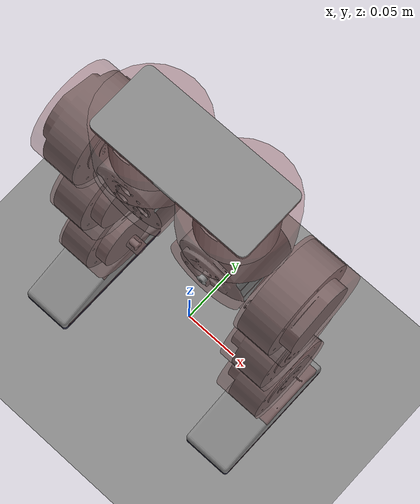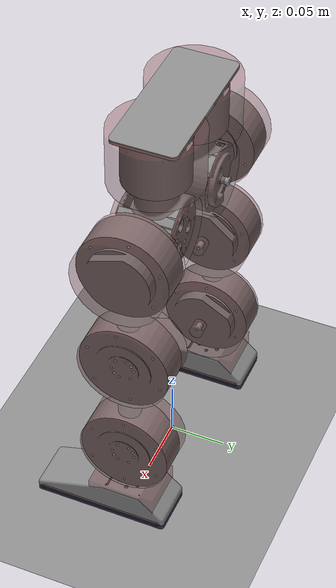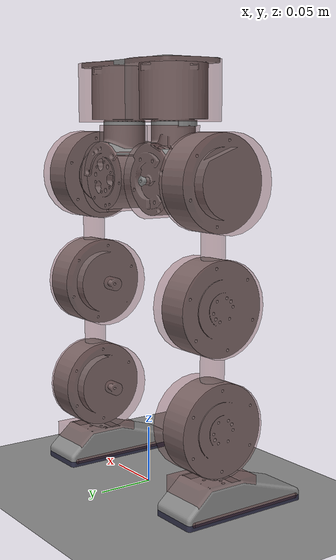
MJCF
<mujoco>
    <compiler inertiafromgeom="auto" angle="degree" coordinate="local" meshdir="meshes"/>
    <include file="asset.xml"/>

    <default>
        <joint limited="false" armature="0.1" frictionloss="1" damping="1"/>
        <site type="sphere" rgba="1 0 0 0.3" size="0.01"/>
        <geom rgba=".55 .55 .55 1" contype="0" conaffinity="0" density="100"/>
        <equality solref="0.0002 1" solimp="0.99 0.99 0.0001"/>
        <general ctrlrange="-100 100" ctrllimited="true"/>

        <default class="motor">
            <motor ctrllimited="true" ctrlrange="-100 100" gear="1"/>
        </default>
        <default class="collision">
            <geom contype="1" conaffinity="1" condim="3" margin="0" gap="0" rgba="0.4 .1 0.1 0.3" mass="0" friction="0.7"/>
        </default>

    </default>

    <option timestep="0.002" iterations="50" solver="PGS" gravity="0 0 -9.81">
        <flag energy="enable" gravity="enable"/>
    </option>

    <worldbody>
        <geom name="floor" pos="0 0 -0.01" size="0 0 .01" type="plane" material="grid" contype="1" conaffinity="1"/>
        <light pos="0 0 2.5" dir="0 0 -1" diffuse=".8 .8 .8" specular=".2 .2 .2" directional="true"/>
        <light pos="0 0 2" dir="0 0 -1" diffuse=".8 .8 .8" specular=".2 .2 .2" directional="true"/>
        <light pos="5 0 2" dir="-1 0 0" diffuse=".8 .8 .8" specular=".2 .2 .2" directional="true"/>
        <light pos="-5 0 2" dir="1 0 0" diffuse=".8 .8 .8" specular=".2 .2 .2" directional="true"/>
        <light pos="0 0 1.5" dir="0 0 -1" diffuse=".8 .8 .8" specular=".2 .2 .2" directional="true"/>

        <body name="base" pos="0 0 0.3685" euler="0 0 0">
            <joint type="free"/>
            <geom name="top_base" type="mesh" mesh="top_base" mass="0.5"/>
            <geom name="left_GSA_motor" pos="-0.037 0 -0.045" xyaxes="1 0 0 0 0 1" type="mesh" mesh="GSA_motor" mass="1"/>
            <geom name="right_GSA_motor" pos="0.037 0 -0.045" xyaxes="1 0 0 0 0 1" type="mesh" mesh="GSA_motor" mass="1"/>

            <geom class="collision" type="cylinder" pos="-0.037 0 -0.022" size="0.04 0.025" xyaxes="1 0 0 0 1 0"/>
            <geom class="collision" type="cylinder" pos="0.037 0 -0.022" size="0.04 0.025" xyaxes="1 0 0 0 1 0"/>

            <!-- LEFT -->
            <body name="left_leg1" pos="-0.037 -0.01375 -0.095" euler="0 0 0">
                <geom name="left_leg1" type="mesh" mesh="leg1" mass="0.5"/>
                <joint name="joint_left_leg1" type="hinge" pos="0 0.01375 0" axis="0 0 1" limited="true" range="-45 45"/>

                <geom class="collision" type="cylinder" pos="0 0.01375 0.035" size="0.022 0.01" xyaxes="1 0 0 0 1 0"/>
                <geom class="collision" type="cylinder" pos="0 0.015 0" size="0.031 0.028" xyaxes="1 0 0 0 0 1"/>

                <body name="left_leg2" pos="0.0115 0.01375 0" euler="0 0 0">
                    <geom name="left_leg2" type="mesh" mesh="leg2" mass="0.5"/>
                    <joint name="joint_left_leg12" type="hinge" pos="0 0 0" axis="0 1 0" limited="true" range="-10 50"/>
                    <joint name="joint_left_leg2" type="hinge" pos="0 0 0" axis="-1 0 0" limited="true" range="-170 170"/>

                    <geom class="collision" type="cylinder" pos="-0.068 0 0" size="0.04 0.021" xyaxes="0 0 1 0 1 0"/>
                    <geom class="collision" type="capsule" pos="-0.06525 0 -0.05" size="0.01 0.01" xyaxes="1 0 0 0 1 0"/>
                    <geom class="collision" type="cylinder" pos="-0.06 0 -0.1" size="0.04 0.021" xyaxes="0 0 1 0 1 0"/>
                    <geom class="collision" type="cylinder" pos="-0.033 0 -0.1" size="0.006 0.006" xyaxes="0 0 1 0 1 0"/>

                    <body name="left_leg3" pos="0 0 -0.1" euler="0 0 0">
                        <geom name="left_leg3" type="mesh" mesh="leg3" mass="1"/>
                        <joint name="joint_left_leg3" type="hinge" pos="0 0 0" axis="1 0 0" limited="true" range="0 130"/>

                        <geom class="collision" type="capsule" pos="-0.06525 0 -0.05" size="0.01 0.01" xyaxes="1 0 0 0 1 0"/>
                        <geom class="collision" type="cylinder" pos="-0.06 0 -0.1" size="0.04 0.021" xyaxes="0 0 1 0 1 0"/>
                        <geom class="collision" type="cylinder" pos="-0.033 0 -0.1" size="0.006 0.006" xyaxes="0 0 1 0 1 0"/>

                        <body name="left_foot" pos="-0.06525 0 -0.1" euler="0 0 0">
                            <geom name="left_foot" type="mesh" mesh="foot" mass="1"/>
                            <geom name="left_sole" type="mesh" pos="0 0 -0.06850" mesh="sole" rgba="0.2 0.2 0.3 1" mass="1"/>
                            <joint name="joint_left_foot" type="hinge" pos="0 0 0" axis="1 0 0" limited="true" range="-65 80"/>

                            <geom class="collision" type="box" pos="0 0 -0.053" size="0.022 0.03 0.012"/>
                            <geom class="collision" type="capsule" pos="0 0.034 -0.06850" size="0.006 0.017" xyaxes="0 0 1 0 1 0"/>
                            <geom class="collision" type="capsule" pos="0 -0.074 -0.06850" size="0.006 0.017" xyaxes="0 0 1 0 1 0"/>
                            <geom class="collision" type="capsule" pos="0.017 -0.02 -0.06850" size="0.006 0.054" xyaxes="1 0 0 0 0 1"/>
                            <geom class="collision" type="capsule" pos="-0.017 -0.02 -0.06850" size="0.006 0.054" xyaxes="1 0 0 0 0 1"/>
                        </body>
                    </body>
                </body>
            </body>

            <!-- RIGHT -->
            <body name="right_leg1" pos="0.037 0.01375 -0.095" xyaxes="-1 0 0 0 -1 0">
                <geom name="right_leg1" type="mesh" mesh="leg1" mass="1"/>
                <joint name="joint_right_leg1" type="hinge" pos="0 0.01375 0" axis="0 0 1" limited="true" range="-45 45"/>

                <geom class="collision" type="cylinder" pos="0 0.01375 0.035" size="0.022 0.01" xyaxes="1 0 0 0 1 0"/>
                <geom class="collision" type="cylinder" pos="0 0.015 0" size="0.031 0.028" xyaxes="1 0 0 0 0 1"/>

                <body name="right_leg2" pos="0.0115 0.01375 0" euler="0 0 0">
                    <geom name="right_leg2" type="mesh" mesh="leg2" mass="1"/>
                    <joint name="joint_right_leg12" type="hinge" pos="0 0 0" axis="0 -1 0" limited="true" range="-10 50"/>
                    <joint name="joint_right_leg2" type="hinge" pos="0 0 0" axis="-1 0 0" limited="true" range="-170 170"/>

                    <geom class="collision" type="cylinder" pos="-0.068 0 0" size="0.04 0.021" xyaxes="0 0 1 0 1 0"/>
                    <geom class="collision" type="capsule" pos="-0.06525 0 -0.05" size="0.01 0.01" xyaxes="1 0 0 0 1 0"/>
                    <geom class="collision" type="cylinder" pos="-0.06 0 -0.1" size="0.04 0.021" xyaxes="0 0 1 0 1 0"/>
                    <geom class="collision" type="cylinder" pos="-0.033 0 -0.1" size="0.006 0.006" xyaxes="0 0 1 0 1 0"/>

                    <body name="right_leg3" pos="0 0 -0.1" euler="0 0 0">
                        <geom name="right_leg3" type="mesh" mesh="leg3" mass="1"/>
                        <joint name="joint_right_leg3" type="hinge" pos="0 0 0" axis="1 0 0" limited="true" range="-130 0"/>

                        <geom class="collision" type="capsule" pos="-0.06525 0 -0.05" size="0.01 0.01" xyaxes="1 0 0 0 1 0"/>
                        <geom class="collision" type="cylinder" pos="-0.06 0 -0.1" size="0.04 0.021" xyaxes="0 0 1 0 1 0"/>
                        <geom class="collision" type="cylinder" pos="-0.033 0 -0.1" size="0.006 0.006" xyaxes="0 0 1 0 1 0"/>

                        <body name="right_foot" pos="-0.06525 0 -0.1" euler="0 0 0">
                            <geom name="right_foot" type="mesh" xyaxes="-1 0 0 0 -1 0" mesh="foot" mass="1"/>
                            <geom name="right_sole" type="mesh" pos="0 0 -0.06850" xyaxes="-1 0 0 0 -1 0" mesh="sole" rgba="0.2 0.2 0.3 1" mass="1"/>
                            <joint name="joint_right_foot" type="hinge" pos="0 0 0" axis="1 0 0" limited="true" range="-65 80"/>

                            <geom class="collision" type="box" pos="0 0 -0.053" size="0.022 0.03 0.012"/>
                            <geom class="collision" type="capsule" pos="0 -0.034 -0.06850" size="0.006 0.017" xyaxes="0 0 1 0 1 0"/>
                            <geom class="collision" type="capsule" pos="0 0.074 -0.06850" size="0.006 0.017" xyaxes="0 0 1 0 1 0"/>
                            <geom class="collision" type="capsule" pos="0.017 0.02 -0.06850" size="0.006 0.054" xyaxes="1 0 0 0 0 1"/>
                            <geom class="collision" type="capsule" pos="-0.017 0.02 -0.06850" size="0.006 0.054" xyaxes="1 0 0 0 0 1"/>
                        </body>
                    </body>
                </body>
            </body>

        </body>

    </worldbody>

    <actuator>
        <general name="m_left_leg1" joint="joint_left_leg1" class="motor"/>
        <general name="m_left_leg12" joint="joint_left_leg12" class="motor"/>
        <general name="m_left_leg2" joint="joint_left_leg2" class="motor"/>
        <general name="m_left_leg3" joint="joint_left_leg3" class="motor"/>
        <general name="m_left_foot" joint="joint_left_foot" class="motor"/>

        <general name="m_right_leg1" joint="joint_right_leg1" class="motor"/>
        <general name="m_right_leg12" joint="joint_right_leg12" class="motor"/>
        <general name="m_right_leg2" joint="joint_right_leg2" class="motor"/>
        <general name="m_right_leg3" joint="joint_right_leg3" class="motor"/>
        <general name="m_right_foot" joint="joint_right_foot" class="motor"/>
    </actuator>

</mujoco>

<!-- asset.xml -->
<mujoco>
    <asset>
        <mesh name="top_base" file="top_base.STL" />
        <mesh name="GSA_motor" file="GSA_motor.STL" />
        <mesh name="leg1" file="leg1.STL" />
        <mesh name="leg2" file="leg2.STL" />
        <mesh name="leg3" file="leg3.STL" />
        <mesh name="foot" file="foot.STL" />
        <mesh name="sole" file="sole.STL" />

        <texture type="skybox" builtin="gradient" rgb1=".3 .5 .7" rgb2="0 0 0" width="512" height="512"/>
        <texture name="grid" type="2d" builtin="checker" width="512" height="512" rgb1=".1 .2 .3" rgb2=".2 .3 .4"/>
        <material name="grid" texture="grid" texrepeat="1 1" texuniform="true" reflectance=".2"/>
      </asset>
</mujoco>
